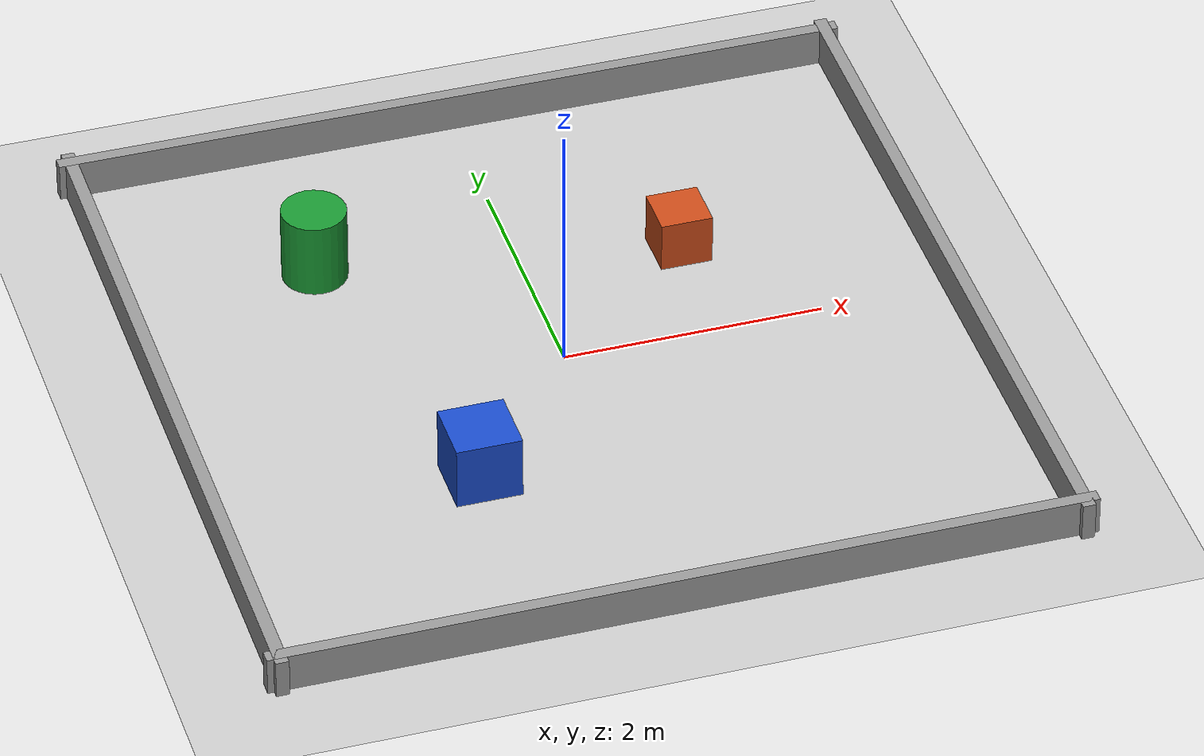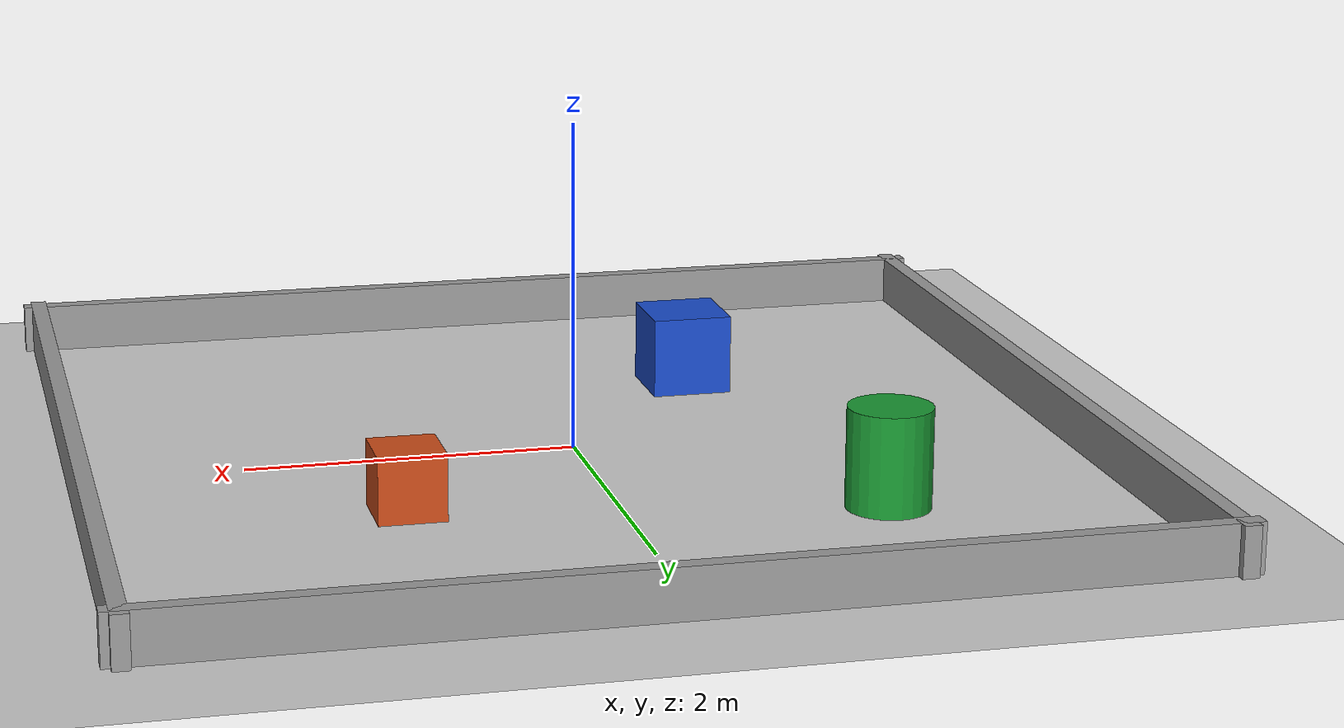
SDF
<?xml version="1.0" ?>
<sdf version="1.8">
  <world name="obstacles">

    <plugin filename="ignition-gazebo-physics-system"
            name="ignition::gazebo::systems::Physics"/>
    <plugin filename="ignition-gazebo-sensors-system"
            name="ignition::gazebo::systems::Sensors">
      <render_engine>ogre2</render_engine>
    </plugin>
    <plugin filename="ignition-gazebo-scene-broadcaster-system"
            name="ignition::gazebo::systems::SceneBroadcaster"/>
    <plugin filename="ignition-gazebo-user-commands-system"
            name="ignition::gazebo::systems::UserCommands"/>

    <light type="directional" name="sun">
      <cast_shadows>true</cast_shadows>
      <pose>0 0 10 0 0 0</pose>
      <diffuse>0.8 0.8 0.8 1</diffuse>
      <specular>0.2 0.2 0.2 1</specular>
      <direction>-0.5 0.1 -0.9</direction>
    </light>

    <model name="ground_plane">
      <static>true</static>
      <link name="link">
        <collision name="collision">
          <geometry><plane><normal>0 0 1</normal><size>100 100</size></plane></geometry>
          <surface><friction><ode><mu>100</mu><mu2>50</mu2></ode></friction></surface>
        </collision>
        <visual name="visual">
          <geometry><plane><normal>0 0 1</normal><size>100 100</size></plane></geometry>
          <material>
            <ambient>0.8 0.8 0.8 1</ambient>
            <diffuse>0.8 0.8 0.8 1</diffuse>
          </material>
        </visual>
      </link>
    </model>

    <!-- Recinto cerrado de ~6x6 m, paredes de 0.3 m -->
    <model name="walls">
      <static>true</static>
      <link name="wall_north">
        <pose>0 3 0.15 0 0 0</pose>
        <collision name="c"><geometry><box><size>6.2 0.1 0.3</size></box></geometry></collision>
        <visual name="v"><geometry><box><size>6.2 0.1 0.3</size></box></geometry>
          <material><ambient>0.6 0.6 0.6 1</ambient><diffuse>0.6 0.6 0.6 1</diffuse></material></visual>
      </link>
      <link name="wall_south">
        <pose>0 -3 0.15 0 0 0</pose>
        <collision name="c"><geometry><box><size>6.2 0.1 0.3</size></box></geometry></collision>
        <visual name="v"><geometry><box><size>6.2 0.1 0.3</size></box></geometry>
          <material><ambient>0.6 0.6 0.6 1</ambient><diffuse>0.6 0.6 0.6 1</diffuse></material></visual>
      </link>
      <link name="wall_east">
        <pose>3 0 0.15 0 0 0</pose>
        <collision name="c"><geometry><box><size>0.1 6.2 0.3</size></box></geometry></collision>
        <visual name="v"><geometry><box><size>0.1 6.2 0.3</size></box></geometry>
          <material><ambient>0.6 0.6 0.6 1</ambient><diffuse>0.6 0.6 0.6 1</diffuse></material></visual>
      </link>
      <link name="wall_west">
        <pose>-3 0 0.15 0 0 0</pose>
        <collision name="c"><geometry><box><size>0.1 6.2 0.3</size></box></geometry></collision>
        <visual name="v"><geometry><box><size>0.1 6.2 0.3</size></box></geometry>
          <material><ambient>0.6 0.6 0.6 1</ambient><diffuse>0.6 0.6 0.6 1</diffuse></material></visual>
      </link>
    </model>

    <!-- Obstáculos interiores -->
    <model name="box_1">
      <static>true</static>
      <pose>1.2 1.0 0.2 0 0 0</pose>
      <link name="link">
        <collision name="c"><geometry><box><size>0.4 0.4 0.4</size></box></geometry></collision>
        <visual name="v"><geometry><box><size>0.4 0.4 0.4</size></box></geometry>
          <material><ambient>0.8 0.3 0.1 1</ambient><diffuse>0.8 0.3 0.1 1</diffuse></material></visual>
      </link>
    </model>

    <model name="box_2">
      <static>true</static>
      <pose>-1.0 -1.2 0.25 0 0 0</pose>
      <link name="link">
        <collision name="c"><geometry><box><size>0.5 0.5 0.5</size></box></geometry></collision>
        <visual name="v"><geometry><box><size>0.5 0.5 0.5</size></box></geometry>
          <material><ambient>0.1 0.3 0.8 1</ambient><diffuse>0.1 0.3 0.8 1</diffuse></material></visual>
      </link>
    </model>

    <model name="cylinder_1">
      <static>true</static>
      <pose>-1.5 1.5 0.3 0 0 0</pose>
      <link name="link">
        <collision name="c"><geometry><cylinder><radius>0.25</radius><length>0.6</length></cylinder></geometry></collision>
        <visual name="v"><geometry><cylinder><radius>0.25</radius><length>0.6</length></cylinder></geometry>
          <material><ambient>0.1 0.6 0.2 1</ambient><diffuse>0.1 0.6 0.2 1</diffuse></material></visual>
      </link>
    </model>

  </world>
</sdf>
